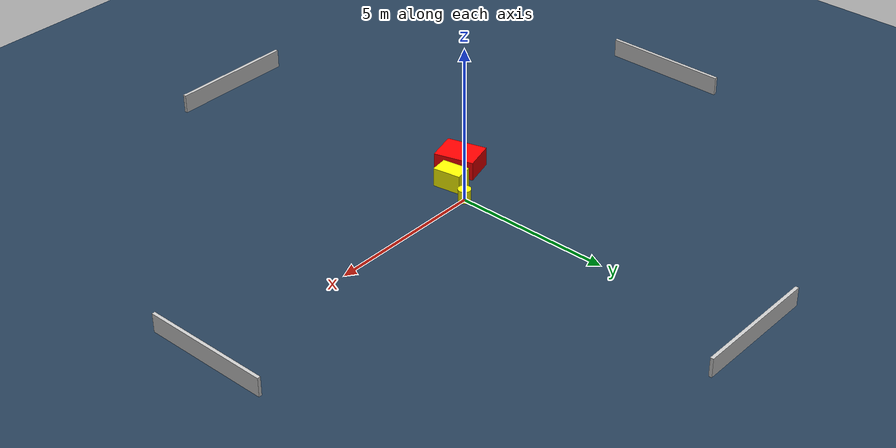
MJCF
<?xml version="1.0" ?>
<mujoco model="generated_environment">
  <option timestep="0.01" integrator="RK4" cone="elliptic"/>
  <default>
    <geom density="1"/>
  </default>
  <asset>
    <texture builtin="gradient" height="3072" name="skybox" rgb1="0.3 0.5 0.7" rgb2="0 0 0" type="skybox" width="512"/>
    <texture builtin="checker" height="300" name="groundplane" rgb1="0.2 0.3 0.4" rgb2="0.1 0.2 0.3" type="2d" width="300"/>
    <material name="groundplane" reflectance="0.2" texrepeat="5 5" texture="groundplane"/>
  </asset>
  <worldbody>
    <light dir="0 0 -1" directional="true" pos="0 0 1.5"/>
    <geom condim="3" friction="0.5 0.005 0.001" material="groundplane" name="floor" pos="0 0 0" size="0 0 0.05" type="plane"/>
    <body name="walls">
      <geom name="wall_1" condim="4" pos="-10.0 0.0 0.3" rgba="0.800000011920929 0.800000011920929 0.800000011920929 1.0" size="0.05 2.0 0.3" type="box"/>
      <geom name="wall_2" condim="4" pos="10.0 0.0 0.3" rgba="0.800000011920929 0.800000011920929 0.800000011920929 1.0" size="0.05 2.0 0.3" type="box"/>
      <geom name="wall_3" condim="4" pos="0.0 -10.0 0.3" rgba="0.800000011920929 0.800000011920929 0.800000011920929 1.0" size="2.0 0.05 0.3" type="box"/>
      <geom name="wall_4" condim="4" pos="0.0 10.0 0.3" rgba="0.800000011920929 0.800000011920929 0.800000011920929 1.0" size="2.0 0.05 0.3" type="box"/>
    </body>
    <body name="robot">
      <joint name="joint_x" type="slide" pos="0 0 0" axis="1 0 0"/>
      <joint name="joint_y" type="slide" pos="0 0 0" axis="0 1 0"/>
      <geom name="robot" type="cylinder" pos="0.0 0.0 0.2" size="0.2 0.2 0.0" mass="5.0" friction="1.0 0.005 0.0001" condim="4" rgba="1.0 1.0 0.0 1.0"/>
    </body>
    <body name="obstacle_1_movable">
      <geom name="obstacle_1_movable" condim="4" pos="-0.3407496187015609 -0.8128978669292707 0.3" euler="0 0 8.853175598478282" friction="0.0 0.005 0.001" rgba="1.0 1.0 0.0 1.0" size="0.2840606877795047 0.44391118569408117 0.3" type="box" mass="0.1"/>
      <joint type="free"/>
    </body>
    <body name="obstacle_2_static">
      <geom name="obstacle_2_static" condim="4" pos="-1.2569740091135906 -1.2651639707007467 0.3" euler="0 0 195.84609008748205" friction="0.0 0.005 0.001" rgba="1.0 0.0 0.0 1.0" size="0.4885816205748682 0.6384504033249062 0.3" type="box"/>
    </body>
  </worldbody>
  <actuator>
    <motor name="actuator_x" joint="joint_x" gear="1" ctrlrange="-1 1"/>
    <motor name="actuator_y" joint="joint_y" gear="1" ctrlrange="-1 1"/>
  </actuator>
</mujoco>
